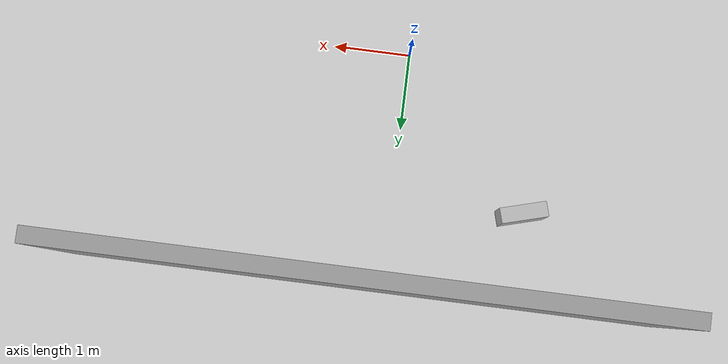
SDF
<sdf version="1.6">
 <world name="default">
  <light name="sun" type="directional">
   <pose>0 0 10 0 -0 0</pose>
   <diffuse>0.8 0.8 0.8 1</diffuse>
   <specular>0.1 0.1 0.1 1</specular>
   <attenuation>
    <range>1000</range>
    <constant>0.9</constant>
    <linear>0.01</linear>
    <quadratic>0.001</quadratic>
   </attenuation>
   <direction>-0.5 0.5 -1</direction>
  </light>
  <model name="ground_plane">
   <static>1</static>
   <link name="link">
    <collision name="collision">
     <geometry><plane><normal>0 0 1</normal><size>100 100</size></plane></geometry>
     <surface><friction><ode><mu>100</mu><mu2>50</mu2></ode></friction></surface>
    </collision>
    <visual name="visual">
     <cast_shadows>0</cast_shadows>
     <geometry><plane><normal>0 0 1</normal><size>100 100</size></plane></geometry>
     <material>
      <script><uri>file://media/materials/scripts/gazebo.material</uri><name>Gazebo/Grey</name></script>
     </material>
    </visual>
   </link>
  </model>
  <gravity>0 0 -9.8</gravity>
  <magnetic_field>6e-06 2.3e-05 -4.2e-05</magnetic_field>
  <atmosphere type="adiabatic"/>
  <physics name="default_physics" default="0" type="ode">
   <max_step_size>0.001</max_step_size>
   <real_time_factor>1</real_time_factor>
   <real_time_update_rate>1000</real_time_update_rate>
  </physics>
  <scene><ambient>0.4 0.4 0.4 1</ambient><background>0.7 0.7 0.7 1</background><shadows>1</shadows></scene>
  <spherical_coordinates>
   <surface_model>EARTH_WGS84</surface_model>
   <latitude_deg>0</latitude_deg>
   <longitude_deg>0</longitude_deg>
   <elevation>0</elevation>
   <heading_deg>0</heading_deg>
  </spherical_coordinates>
  <model name="grey_wall_asl">
   <static>1</static>
   <link name="link">
    <pose>0 0 1.4 0 -0 0</pose>
    <collision name="collision"><geometry><box><size>7.5 0.2 2.8</size></box></geometry></collision>
    <visual name="visual">
     <cast_shadows>0</cast_shadows>
     <geometry><box><size>7.5 0.2 2.8</size></box></geometry>
     <material>
      <script>
       <uri>model://grey_wall_asl/materials/scripts</uri>
       <uri>model://grey_wall_asl/materials/textures</uri>
       <name>vrc/grey_wall</name>
      </script>
     </material>
    </visual>
   </link>
   <pose>0.245174 3.06612 0 0 -0 0</pose>
  </model>
  <model name="box_april_tag">
   <pose>-1.67554 1.9388 0.300139 1.56941 -2e-06 0.274842</pose>
   <static>1</static>
   <link name="link">
    <collision name="collision"><geometry><box><size>0.6 0.6 0.2</size></box></geometry></collision>
    <visual name="visual">
     <geometry><mesh><uri>model://box_april_tag/meshes/mesh.dae</uri><scale>.1 .1 .1</scale></mesh></geometry>
    </visual>
    <inertial>
     <inertia><ixx>1</ixx><ixy>0</ixy><ixz>0</ixz><iyy>1</iyy><iyz>0</iyz><izz>1</izz></inertia>
     <mass>1</mass>
    </inertial>
   </link>
  </model>
 </world>
</sdf>
